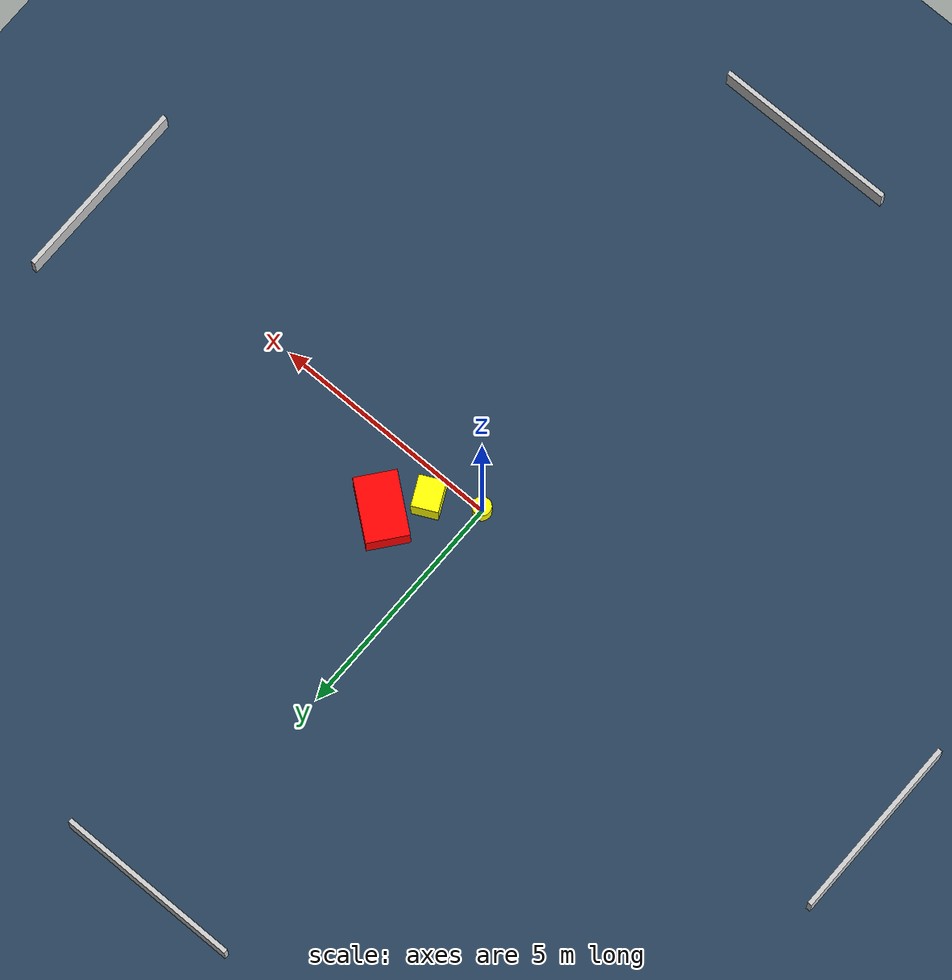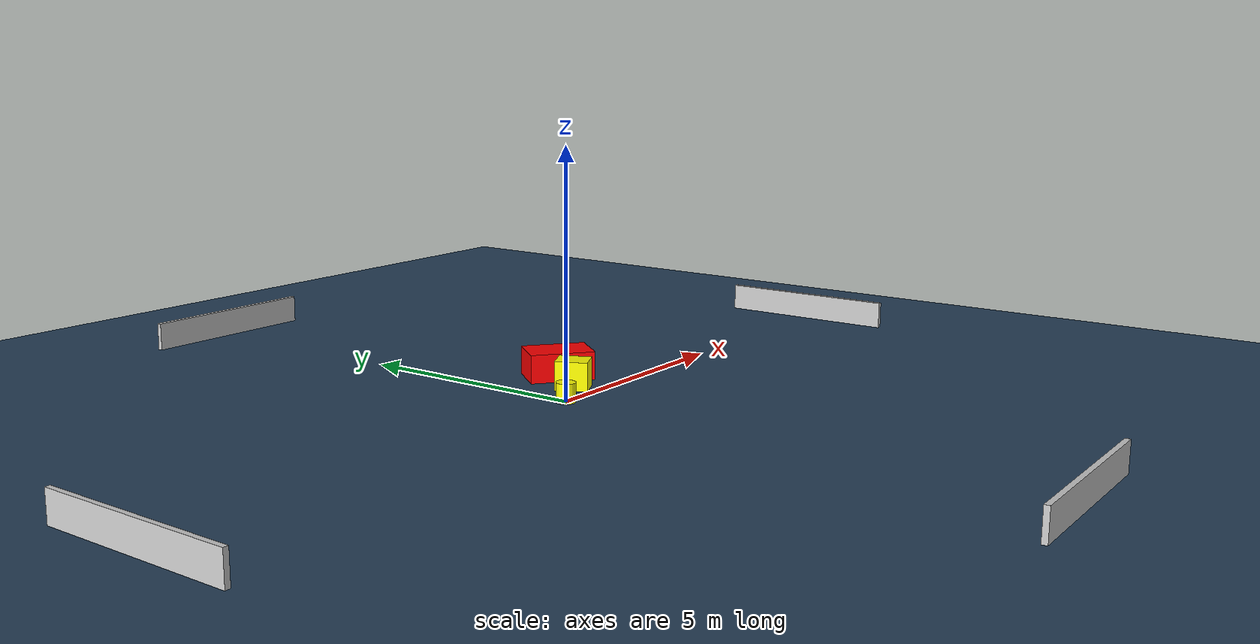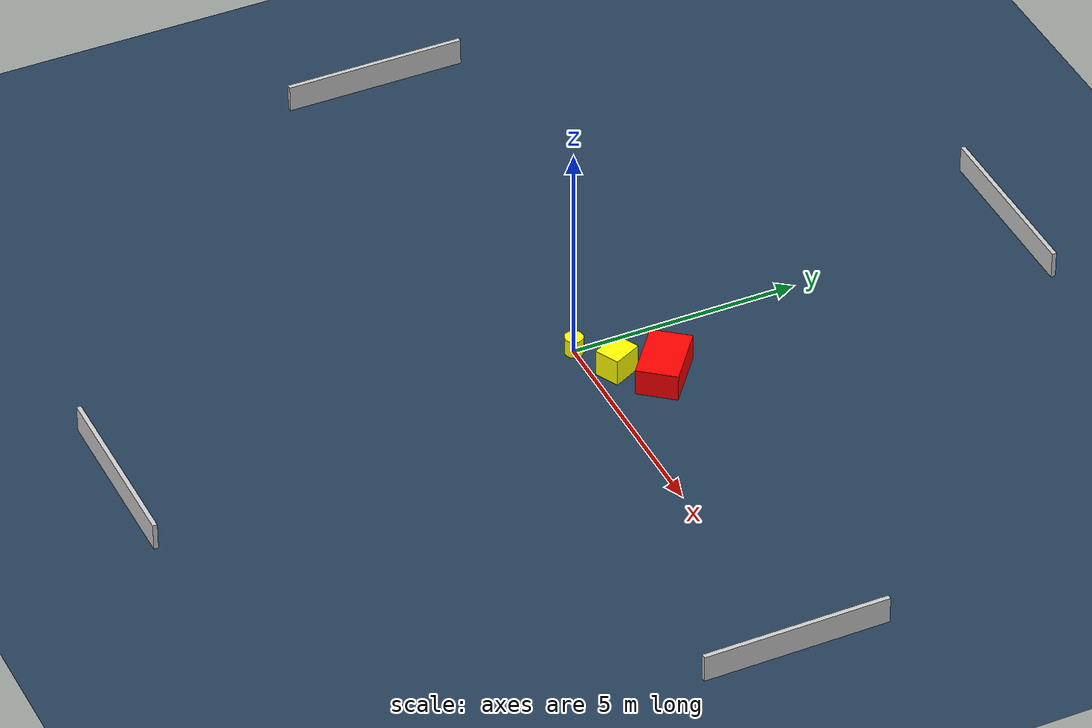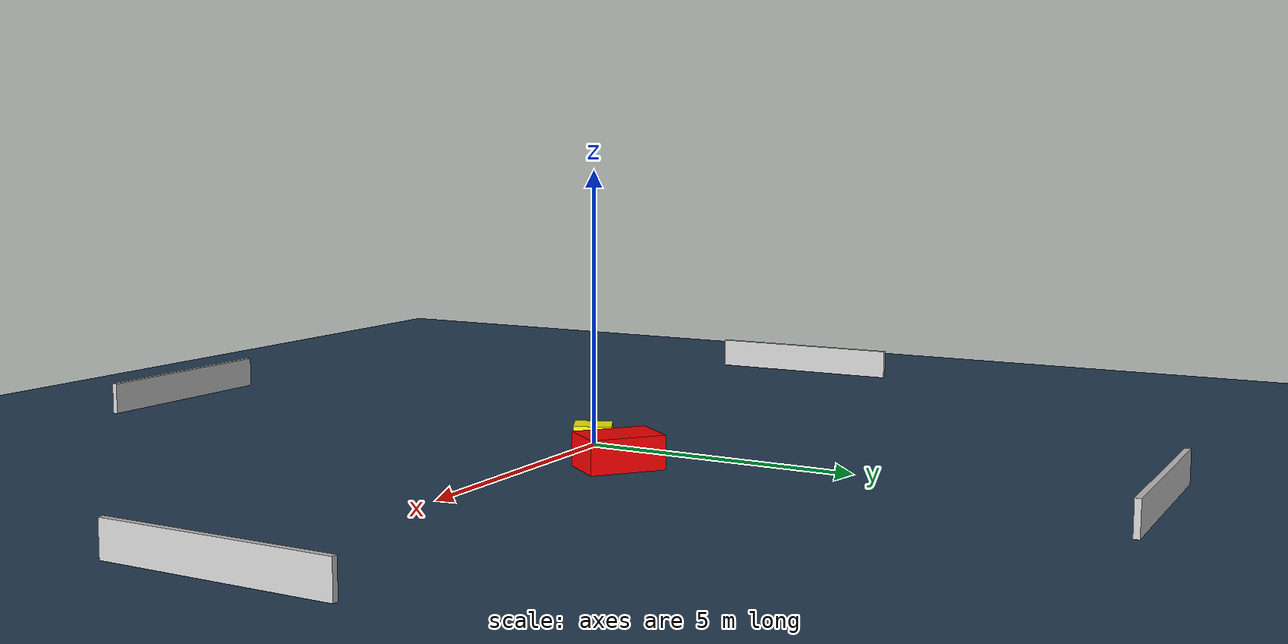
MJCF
<?xml version="1.0" ?>
<mujoco model="generated_environment">
  <option timestep="0.01" integrator="RK4" cone="elliptic"/>
  <default>
    <geom density="1"/>
  </default>
  <asset>
    <texture builtin="gradient" height="3072" name="skybox" rgb1="0.3 0.5 0.7" rgb2="0 0 0" type="skybox" width="512"/>
    <texture builtin="checker" height="300" name="groundplane" rgb1="0.2 0.3 0.4" rgb2="0.1 0.2 0.3" type="2d" width="300"/>
    <material name="groundplane" reflectance="0.2" texrepeat="5 5" texture="groundplane"/>
  </asset>
  <worldbody>
    <light dir="0 0 -1" directional="true" pos="0 0 1.5"/>
    <geom condim="3" friction="0.5 0.005 0.001" material="groundplane" name="floor" pos="0 0 0" size="0 0 0.05" type="plane"/>
    <body name="walls">
      <geom name="wall_1" condim="4" pos="-10.0 0.0 0.3" rgba="0.800000011920929 0.800000011920929 0.800000011920929 1.0" size="0.05 2.0 0.3" type="box"/>
      <geom name="wall_2" condim="4" pos="10.0 0.0 0.3" rgba="0.800000011920929 0.800000011920929 0.800000011920929 1.0" size="0.05 2.0 0.3" type="box"/>
      <geom name="wall_3" condim="4" pos="0.0 -10.0 0.3" rgba="0.800000011920929 0.800000011920929 0.800000011920929 1.0" size="2.0 0.05 0.3" type="box"/>
      <geom name="wall_4" condim="4" pos="0.0 10.0 0.3" rgba="0.800000011920929 0.800000011920929 0.800000011920929 1.0" size="2.0 0.05 0.3" type="box"/>
    </body>
    <body name="robot">
      <joint name="joint_x" type="slide" pos="0 0 0" axis="1 0 0"/>
      <joint name="joint_y" type="slide" pos="0 0 0" axis="0 1 0"/>
      <geom name="robot" type="cylinder" pos="0.0 0.0 0.2" size="0.2 0.2 0.0" mass="5.0" friction="1.0 0.005 0.0001" condim="4" rgba="1.0 1.0 0.0 1.0"/>
    </body>
    <body name="obstacle_1_movable">
      <geom name="obstacle_1_movable" condim="4" pos="0.9356565955822874 0.5183201810154117 0.3" euler="0 0 205.91747735053244" friction="0.0 0.005 0.001" rgba="1.0 1.0 0.0 1.0" size="0.28239944658636623 0.33588270830464817 0.3" type="box" mass="0.1"/>
      <joint type="free"/>
    </body>
    <body name="obstacle_2_static">
      <geom name="obstacle_2_static" condim="4" pos="1.4732760609596787 1.318645991550938 0.3" euler="0 0 321.45133338804595" friction="0.0 0.005 0.001" rgba="1.0 0.0 0.0 1.0" size="0.6819668317135464 0.44944653435141635 0.3" type="box"/>
    </body>
  </worldbody>
  <actuator>
    <motor name="actuator_x" joint="joint_x" gear="1" ctrlrange="-1 1"/>
    <motor name="actuator_y" joint="joint_y" gear="1" ctrlrange="-1 1"/>
  </actuator>
</mujoco>
